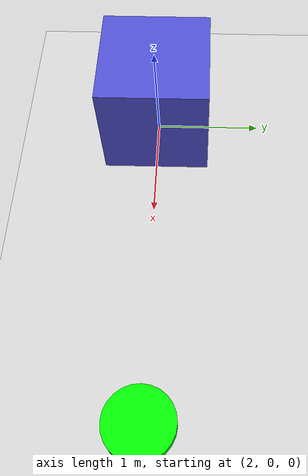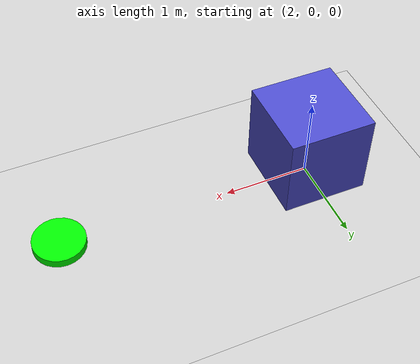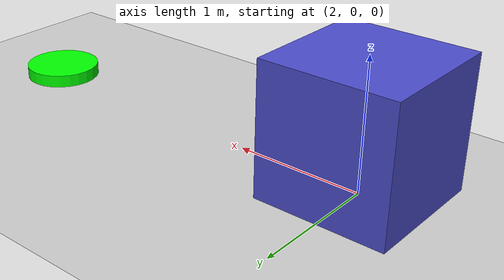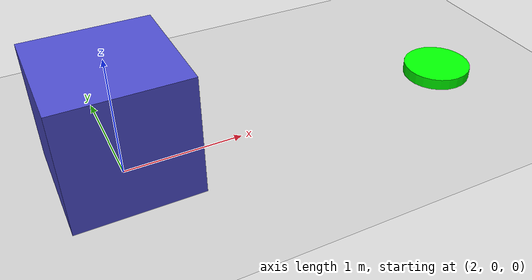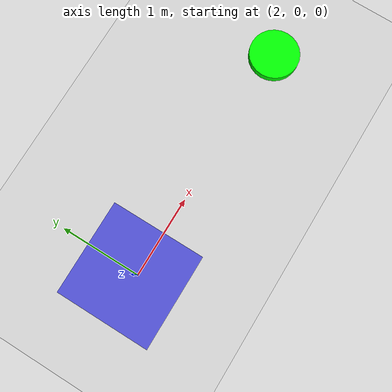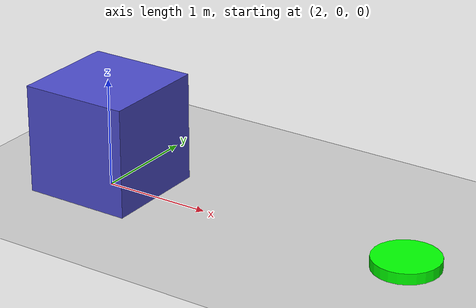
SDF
<?xml version="1.0"?>
<sdf version="1.8">
  <world name="robot_world">
    <!-- Physics -->
    <physics type="ode">
      <max_step_size>0.001</max_step_size>
      <real_time_factor>1.0</real_time_factor>
    </physics>

    <!-- Lighting -->
    <light type="directional" name="sun">
      <cast_shadows>true</cast_shadows>
      <pose>0 0 10 0 0 0</pose>
      <diffuse>0.8 0.8 0.8 1</diffuse>
      <specular>0.2 0.2 0.2 1</specular>
      <direction>-0.5 0.1 -0.9</direction>
    </light>

    <!-- Ground Plane -->
    <model name="ground_plane">
      <static>true</static>
      <link name="link">
        <collision name="collision">
          <geometry><plane><normal>0 0 1</normal><size>100 100</size></plane></geometry>
        </collision>
        <visual name="visual">
          <geometry><plane><normal>0 0 1</normal><size>100 100</size></plane></geometry>
          <material><ambient>0.8 0.8 0.8 1</ambient></material>
        </visual>
      </link>
    </model>

    <!-- Obstacle Box -->
    <model name="obstacle_box">
      <static>true</static>
      <pose>2 0 0.5 0 0 0</pose>
      <link name="link">
        <collision name="collision">
          <geometry><box><size>1 1 1</size></box></geometry>
        </collision>
        <visual name="visual">
          <geometry><box><size>1 1 1</size></box></geometry>
          <material><ambient>0.3 0.3 0.8 1</ambient></material>
        </visual>
      </link>
    </model>

    <!-- Target Marker -->
    <model name="target">
      <static>true</static>
      <pose>5 0 0.1 0 0 0</pose>
      <link name="link">
        <visual name="visual">
          <geometry><cylinder><radius>0.3</radius><length>0.1</length></cylinder></geometry>
          <material><ambient>0 1 0 1</ambient></material>
        </visual>
      </link>
    </model>
  </world>
</sdf>
